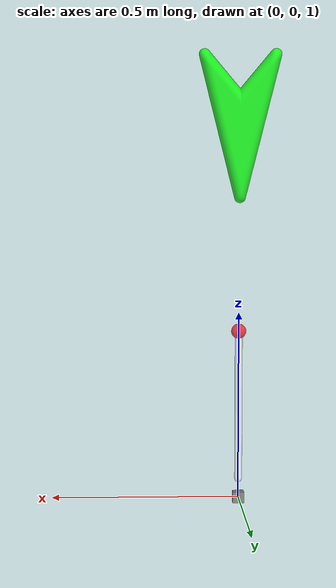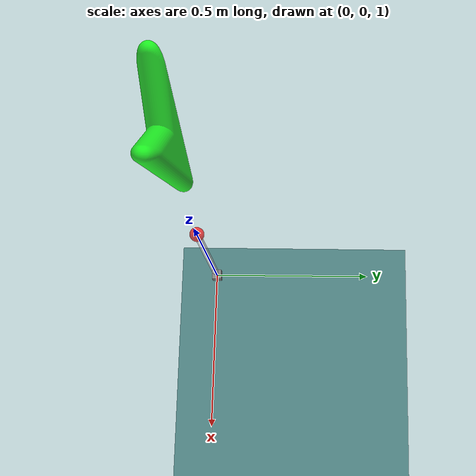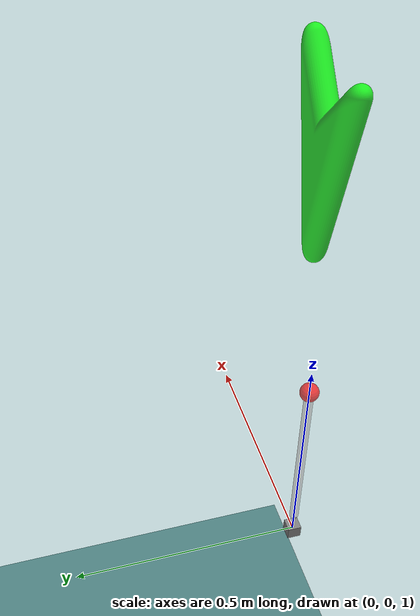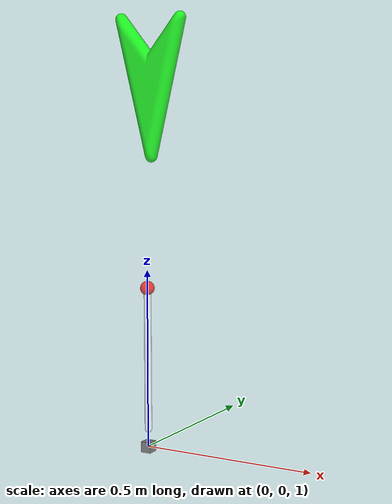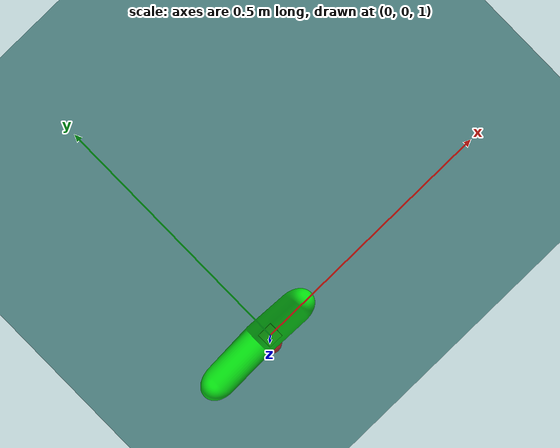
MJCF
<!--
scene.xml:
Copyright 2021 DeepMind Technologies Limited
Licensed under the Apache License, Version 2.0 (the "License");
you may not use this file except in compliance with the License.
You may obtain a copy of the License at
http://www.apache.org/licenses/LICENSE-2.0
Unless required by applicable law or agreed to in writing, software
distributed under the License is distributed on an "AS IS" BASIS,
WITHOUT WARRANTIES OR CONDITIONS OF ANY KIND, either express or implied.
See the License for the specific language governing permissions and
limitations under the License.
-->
<mujoco model="Difter">
  <include file="scene.xml"/>
  <option timestep="0.002" jacobian="dense"/>
  <size nconmax="100" njmax="300" nstack="50000"/>

  <worldbody>
    <body name="torso" pos="0 0 1">
        <camera name="trackhorizontal" mode="trackcom" pos="0 -3 0.3" xyaxes="1 0 0 0 0 1"/>
        <joint type="slide" axis="1 0 0" name="cart" damping="10" armature="0.1" limited="false" range="-5 5"/>
        <joint type="slide" axis="0 1 0" name="cart2" damping="10" armature="0.1" limited="false" range="-5 5"/>
        <geom type="box" size="0.015 0.015 0.015"/>
        <body name="lwaist" pos="0 0.0 0.05">
            <joint class="bearing" pos="0 0 0" axis="1 0 0" name="pole" limited="false" range="-45 45"/>
            <joint class="bearing" pos="0 0 0" axis="0 1 0" name="pole2" limited="false" range="-45 45"/>
           <geom class="bearing" pos="0 0 0.2" size="0.01 0.2" type="capsule" rgba="1 1 1 0.7" />
            <body name="ball" pos="0 0 0.4">
                <joint class="target_slider" axis="1 0 0" name="target_x"/>
                <geom class="target_slider" name="target" size="0.02" rgba="1. 0. 0.0 0.7"/>
                <site name="target_sensor_zone" rgba="1. 0. 0.0 0.7" size="0.01" type="sphere"/>

            </body>
       </body>
    </body>
  </worldbody>

  <actuator>
      <motor name="motor1" gear="40" joint="cart" />
      <motor name="motor2" gear="40" joint="cart2" />
  </actuator>

  <sensor>
      <jointpos joint="pole" noise="0"/>
      <jointvel joint="pole" noise="0"/>
      <jointvel joint="cart" noise="0"/>
      <jointpos joint="cart" noise="0"/>

      <jointpos joint="pole2" noise="0"/>
      <jointvel joint="pole2" noise="0"/>
      <jointvel joint="cart2" noise="0"/>
      <jointpos joint="cart2" noise="0"/>
  </sensor>

</mujoco>

<default class="target_slider">
    <joint armature="10000" damping="10000" limited="true" pos="0 0 0" range="-1000 1000" ref=".1" stiffness="0" type="slide"/>
    <geom conaffinity="0" pos="0 0 0" rgba=" 1 0 1 0.5" size="0.005" type="sphere"/>
</default>

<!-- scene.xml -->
<mujoco>
  <compiler meshdir="" texturedir=""/>
  <statistic extent="1.5" meansize=".05"/>
  <option timestep="0.005" jacobian="sparse"/>

  <visual>
    <rgba haze="0.15 0.25 0.35 1"/>
    <quality shadowsize="4096"/>
    <map stiffness="700" shadowscale="0.5" fogstart="10" fogend="15" zfar="40" haze="0.3"/>
  </visual>

  <asset>
    <texture type="skybox" builtin="gradient" rgb1="0.1 0.1 0.2" rgb2="0.0 0.0 0.0" width="512" height="512"/>
    <texture name="texplane" type="2d" builtin="checker" rgb1=".2 .4 .4" rgb2=".4 0.6 0.6"
      width="512" height="512" mark="cross" markrgb="8 .8 .8"/>

    <texture name="texgoal" type="2d" builtin="checker" rgb1="0 0 0" rgb2="1 1 1"
      width="512" height="512" mark="cross" markrgb="8 .8 .8"/>

      <texture name="texcarpet" type="2d" file="carpet.png"/>
      <texture name="texsponge" type="2d" file="sponge.png"/>
      <texture name="texmarble" type="cube" file="marble.png"/>

      <material name="matplane" reflectance="0.3" texture="texplane" texrepeat="1 1" texuniform="true"/>
      <material name="matgoal" reflectance="0.3" texture="texgoal" texrepeat="10 10" texuniform="true"/>
      <material name="matcarpet" texture="texcarpet"/>
      <material name="matsponge" texture="texsponge" specular="0.3"/>
      <material name="matmarble" texture="texmarble" rgba=".7 .7 .7 1"/>

      <mesh name="wheel" file="wheel2.stl" scale="0.001 0.001 0.001"/>
      <mesh name="arrow" file="arrow.stl" scale="0.005 0.005 0.005"/>
  </asset>

  <default>
      <joint limited="false" damping="1" armature="0"/>
      <motor ctrlrange="-1. 1." ctrllimited="true"/>

      <default class="bearing">
          <joint pos="0 0 0" limited="false" damping="0.01" armature="0.01" type="hinge" axis="0 1 0"/>
          <geom pos="0 0 0" conaffinity="0" rgba="1 0 1 0.7" friction="0 0 0"/>
      </default>

      <default class="target_slider">
          <joint armature="10000" damping="10000" limited="true" pos="0 0 0" range="-1000 1000" ref=".1" stiffness="0" type="slide"/>
          <geom conaffinity="0" pos="0 0 0" rgba=" 1 0 1 0.5" size="0.005" type="sphere"/>
      </default>
  </default>

  <worldbody>

    <light directional="true" diffuse=".4 .4 .4" specular="0.1 0.1 0.1" pos="0 0 5.0" dir="0 0 -1" castshadow="false"/>
    <light directional="true" diffuse=".6 .6 .6" specular="0.2 0.2 0.2" pos="0 0 4" dir="0 0 -1"/>
    <geom contype="1" name="floor" pos="0 0 0" size="0 0 .25" type="plane" material="matplane" condim="6" solimp="0 0.95 0.001 0.5 2" solref="0.02 1" margin="0"/>

    <body mocap="true" pos="0 0 2">
    <geom euler="-90 0 0" type="mesh" conaffinity="0" contype="0" mesh="arrow" rgba="0 1 0 0.8" />
-->
   </body>
  </worldbody>
</mujoco>
